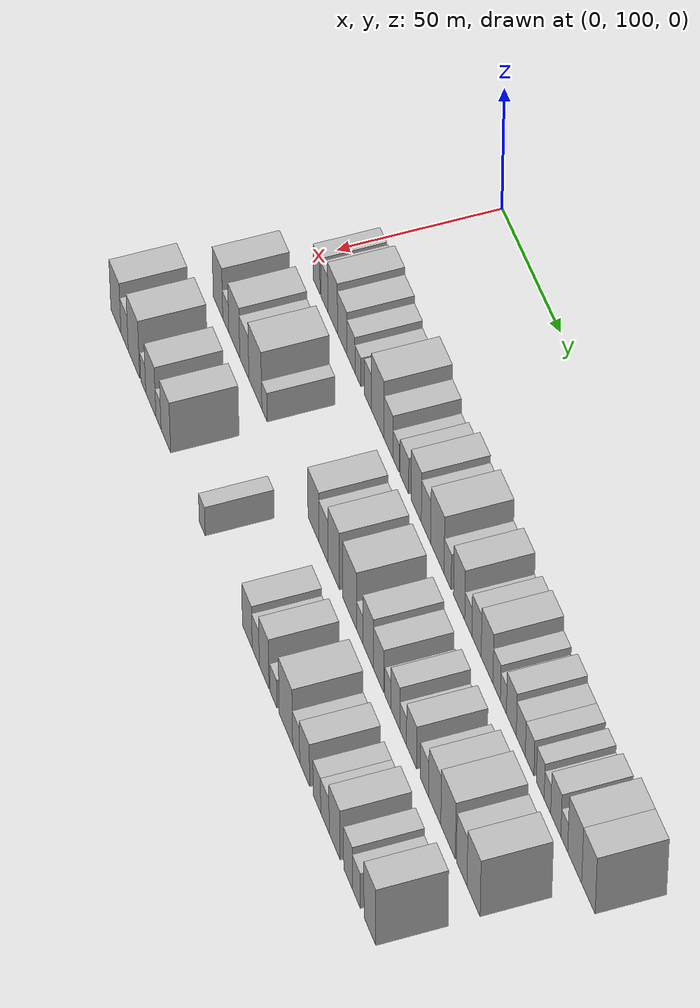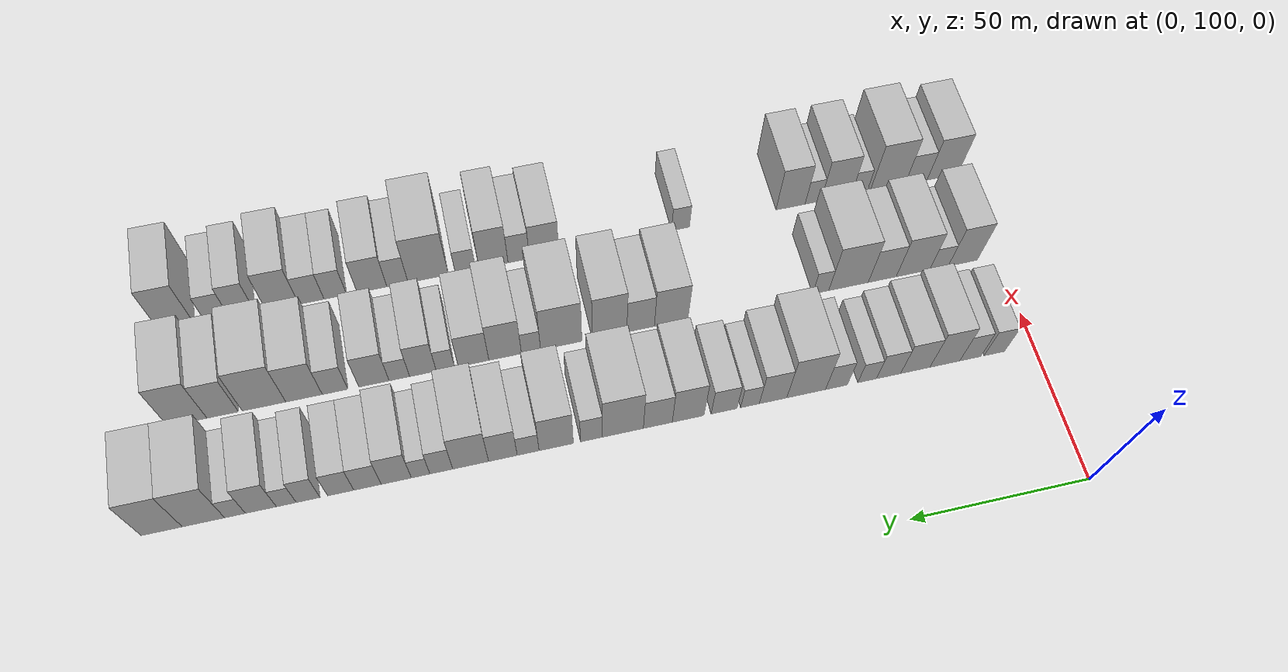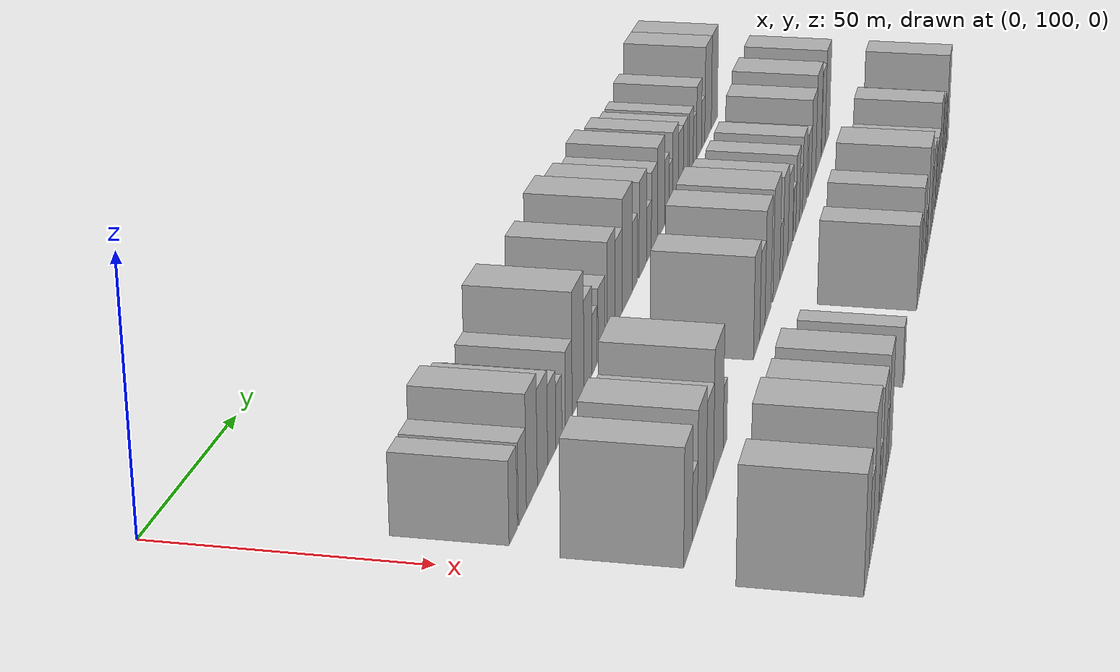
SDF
<sdf version="1.6">
 <world name="default">
  <model name="building_49">
   <static>1</static>
   <pose>50.0000 111.6408 0 0.000000 0.000000 0.000000</pose>
   <link name="link">
    <pose>0 0 7.50 0 0 0</pose>
    <collision name="collision"><geometry><box><size>20.0000 6.0397 15.0000</size></box></geometry></collision>
    <visual name="visual">
     <cast_shadows>0</cast_shadows>
     <geometry><box><size>20.0000 6.0397 15.0000</size></box></geometry>
     <material>
      <script>
       <uri>model://HANNAS_wall/materials/scripts</uri>
       <uri>model://HANNAS_wall/materials/textures</uri>
       <name>vrc/HANNAS_wall</name>
      </script>
     </material>
    </visual>
   </link>
  </model>
  <model name="building_50">
   <static>1</static>
   <pose>50.0000 118.7300 0 0.000000 0.000000 0.000000</pose>
   <link name="link">
    <pose>0 0 7.50 0 0 0</pose>
    <collision name="collision"><geometry><box><size>20.0000 6.1386 15.0000</size></box></geometry></collision>
    <visual name="visual">
     <cast_shadows>0</cast_shadows>
     <geometry><box><size>20.0000 6.1386 15.0000</size></box></geometry>
     <material>
      <script>
       <uri>model://HANNAS_wall/materials/scripts</uri>
       <uri>model://HANNAS_wall/materials/textures</uri>
       <name>vrc/HANNAS_wall</name>
      </script>
     </material>
    </visual>
   </link>
  </model>
  <model name="building_51">
   <static>1</static>
   <pose>50.0000 126.1779 0 0.000000 0.000000 0.000000</pose>
   <link name="link">
    <pose>0 0 10.50 0 0 0</pose>
    <collision name="collision"><geometry><box><size>20.0000 8.7572 21.0000</size></box></geometry></collision>
    <visual name="visual">
     <cast_shadows>0</cast_shadows>
     <geometry><box><size>20.0000 8.7572 21.0000</size></box></geometry>
     <material>
      <script>
       <uri>model://HANNAS_wall/materials/scripts</uri>
       <uri>model://HANNAS_wall/materials/textures</uri>
       <name>vrc/HANNAS_wall</name>
      </script>
     </material>
    </visual>
   </link>
  </model>
  <model name="building_52">
   <static>1</static>
   <pose>50.0000 134.8192 0 0.000000 0.000000 0.000000</pose>
   <link name="link">
    <pose>0 0 9.00 0 0 0</pose>
    <collision name="collision"><geometry><box><size>20.0000 8.5254 18.0000</size></box></geometry></collision>
    <visual name="visual">
     <cast_shadows>0</cast_shadows>
     <geometry><box><size>20.0000 8.5254 18.0000</size></box></geometry>
     <material>
      <script>
       <uri>model://HANNAS_wall/materials/scripts</uri>
       <uri>model://HANNAS_wall/materials/textures</uri>
       <name>vrc/HANNAS_wall</name>
      </script>
     </material>
    </visual>
   </link>
  </model>
  <model name="building_53">
   <static>1</static>
   <pose>50.0000 142.6200 0 0.000000 0.000000 0.000000</pose>
   <link name="link">
    <pose>0 0 7.50 0 0 0</pose>
    <collision name="collision"><geometry><box><size>20.0000 7.0762 15.0000</size></box></geometry></collision>
    <visual name="visual">
     <cast_shadows>0</cast_shadows>
     <geometry><box><size>20.0000 7.0762 15.0000</size></box></geometry>
     <material>
      <script>
       <uri>model://HANNAS_wall/materials/scripts</uri>
       <uri>model://HANNAS_wall/materials/textures</uri>
       <name>vrc/HANNAS_wall</name>
      </script>
     </material>
    </visual>
   </link>
  </model>
  <model name="building_54">
   <static>1</static>
   <pose>50.0000 148.8236 0 0.000000 0.000000 0.000000</pose>
   <link name="link">
    <pose>0 0 6.00 0 0 0</pose>
    <collision name="collision"><geometry><box><size>20.0000 5.3311 12.0000</size></box></geometry></collision>
    <visual name="visual">
     <cast_shadows>0</cast_shadows>
     <geometry><box><size>20.0000 5.3311 12.0000</size></box></geometry>
     <material>
      <script>
       <uri>model://HANNAS_wall/materials/scripts</uri>
       <uri>model://HANNAS_wall/materials/textures</uri>
       <name>vrc/HANNAS_wall</name>
      </script>
     </material>
    </visual>
   </link>
  </model>
  <model name="building_55">
   <static>1</static>
   <pose>50.0000 157.6245 0 0.000000 0.000000 0.000000</pose>
   <link name="link">
    <pose>0 0 7.50 0 0 0</pose>
    <collision name="collision"><geometry><box><size>20.0000 6.2707 15.0000</size></box></geometry></collision>
    <visual name="visual">
     <cast_shadows>0</cast_shadows>
     <geometry><box><size>20.0000 6.2707 15.0000</size></box></geometry>
     <material>
      <script>
       <uri>model://HANNAS_wall/materials/scripts</uri>
       <uri>model://HANNAS_wall/materials/textures</uri>
       <name>vrc/HANNAS_wall</name>
      </script>
     </material>
    </visual>
   </link>
  </model>
  <model name="building_56">
   <static>1</static>
   <pose>50.0000 166.3002 0 0.000000 0.000000 0.000000</pose>
   <link name="link">
    <pose>0 0 12.00 0 0 0</pose>
    <collision name="collision"><geometry><box><size>20.0000 11.0808 24.0000</size></box></geometry></collision>
    <visual name="visual">
     <cast_shadows>0</cast_shadows>
     <geometry><box><size>20.0000 11.0808 24.0000</size></box></geometry>
     <material>
      <script>
       <uri>model://HANNAS_wall/materials/scripts</uri>
       <uri>model://HANNAS_wall/materials/textures</uri>
       <name>vrc/HANNAS_wall</name>
      </script>
     </material>
    </visual>
   </link>
  </model>
  <model name="building_57">
   <static>1</static>
   <pose>50.0000 175.7462 0 0.000000 0.000000 0.000000</pose>
   <link name="link">
    <pose>0 0 9.00 0 0 0</pose>
    <collision name="collision"><geometry><box><size>20.0000 7.8112 18.0000</size></box></geometry></collision>
    <visual name="visual">
     <cast_shadows>0</cast_shadows>
     <geometry><box><size>20.0000 7.8112 18.0000</size></box></geometry>
     <material>
      <script>
       <uri>model://HANNAS_wall/materials/scripts</uri>
       <uri>model://HANNAS_wall/materials/textures</uri>
       <name>vrc/HANNAS_wall</name>
      </script>
     </material>
    </visual>
   </link>
  </model>
  <model name="building_58">
   <static>1</static>
   <pose>50.0000 182.2998 0 0.000000 0.000000 0.000000</pose>
   <link name="link">
    <pose>0 0 6.00 0 0 0</pose>
    <collision name="collision"><geometry><box><size>20.0000 5.2960 12.0000</size></box></geometry></collision>
    <visual name="visual">
     <cast_shadows>0</cast_shadows>
     <geometry><box><size>20.0000 5.2960 12.0000</size></box></geometry>
     <material>
      <script>
       <uri>model://HANNAS_wall/materials/scripts</uri>
       <uri>model://HANNAS_wall/materials/textures</uri>
       <name>vrc/HANNAS_wall</name>
      </script>
     </material>
    </visual>
   </link>
  </model>
  <model name="building_59">
   <static>1</static>
   <pose>50.0000 189.6086 0 0.000000 0.000000 0.000000</pose>
   <link name="link">
    <pose>0 0 7.50 0 0 0</pose>
    <collision name="collision"><geometry><box><size>20.0000 7.3216 15.0000</size></box></geometry></collision>
    <visual name="visual">
     <cast_shadows>0</cast_shadows>
     <geometry><box><size>20.0000 7.3216 15.0000</size></box></geometry>
     <material>
      <script>
       <uri>model://HANNAS_wall/materials/scripts</uri>
       <uri>model://HANNAS_wall/materials/textures</uri>
       <name>vrc/HANNAS_wall</name>
      </script>
     </material>
    </visual>
   </link>
  </model>
  <model name="building_60">
   <static>1</static>
   <pose>50.0000 199.7213 0 0.000000 0.000000 0.000000</pose>
   <link name="link">
    <pose>0 0 10.50 0 0 0</pose>
    <collision name="collision"><geometry><box><size>20.0000 8.9038 21.0000</size></box></geometry></collision>
    <visual name="visual">
     <cast_shadows>0</cast_shadows>
     <geometry><box><size>20.0000 8.9038 21.0000</size></box></geometry>
     <material>
      <script>
       <uri>model://HANNAS_wall/materials/scripts</uri>
       <uri>model://HANNAS_wall/materials/textures</uri>
       <name>vrc/HANNAS_wall</name>
      </script>
     </material>
    </visual>
   </link>
  </model>
  <model name="building_61">
   <static>1</static>
   <pose>50.0000 208.2026 0 0.000000 0.000000 0.000000</pose>
   <link name="link">
    <pose>0 0 9.00 0 0 0</pose>
    <collision name="collision"><geometry><box><size>20.0000 8.0587 18.0000</size></box></geometry></collision>
    <visual name="visual">
     <cast_shadows>0</cast_shadows>
     <geometry><box><size>20.0000 8.0587 18.0000</size></box></geometry>
     <material>
      <script>
       <uri>model://HANNAS_wall/materials/scripts</uri>
       <uri>model://HANNAS_wall/materials/textures</uri>
       <name>vrc/HANNAS_wall</name>
      </script>
     </material>
    </visual>
   </link>
  </model>
  <model name="building_62">
   <static>1</static>
   <pose>50.0000 217.9049 0 0.000000 0.000000 0.000000</pose>
   <link name="link">
    <pose>0 0 12.00 0 0 0</pose>
    <collision name="collision"><geometry><box><size>20.0000 11.3460 24.0000</size></box></geometry></collision>
    <visual name="visual">
     <cast_shadows>0</cast_shadows>
     <geometry><box><size>20.0000 11.3460 24.0000</size></box></geometry>
     <material>
      <script>
       <uri>model://HANNAS_wall/materials/scripts</uri>
       <uri>model://HANNAS_wall/materials/textures</uri>
       <name>vrc/HANNAS_wall</name>
      </script>
     </material>
    </visual>
   </link>
  </model>
  <model name="building_63">
   <static>1</static>
   <pose>50.0000 226.5868 0 0.000000 0.000000 0.000000</pose>
   <link name="link">
    <pose>0 0 7.50 0 0 0</pose>
    <collision name="collision"><geometry><box><size>20.0000 6.0177 15.0000</size></box></geometry></collision>
    <visual name="visual">
     <cast_shadows>0</cast_shadows>
     <geometry><box><size>20.0000 6.0177 15.0000</size></box></geometry>
     <material>
      <script>
       <uri>model://HANNAS_wall/materials/scripts</uri>
       <uri>model://HANNAS_wall/materials/textures</uri>
       <name>vrc/HANNAS_wall</name>
      </script>
     </material>
    </visual>
   </link>
  </model>
  <model name="building_64">
   <static>1</static>
   <pose>50.0000 236.2916 0 0.000000 0.000000 0.000000</pose>
   <link name="link">
    <pose>0 0 10.50 0 0 0</pose>
    <collision name="collision"><geometry><box><size>20.0000 9.3919 21.0000</size></box></geometry></collision>
    <visual name="visual">
     <cast_shadows>0</cast_shadows>
     <geometry><box><size>20.0000 9.3919 21.0000</size></box></geometry>
     <material>
      <script>
       <uri>model://HANNAS_wall/materials/scripts</uri>
       <uri>model://HANNAS_wall/materials/textures</uri>
       <name>vrc/HANNAS_wall</name>
      </script>
     </material>
    </visual>
   </link>
  </model>
  <model name="building_65">
   <static>1</static>
   <pose>50.0000 243.9687 0 0.000000 0.000000 0.000000</pose>
   <link name="link">
    <pose>0 0 6.00 0 0 0</pose>
    <collision name="collision"><geometry><box><size>20.0000 5.9624 12.0000</size></box></geometry></collision>
    <visual name="visual">
     <cast_shadows>0</cast_shadows>
     <geometry><box><size>20.0000 5.9624 12.0000</size></box></geometry>
     <material>
      <script>
       <uri>model://HANNAS_wall/materials/scripts</uri>
       <uri>model://HANNAS_wall/materials/textures</uri>
       <name>vrc/HANNAS_wall</name>
      </script>
     </material>
    </visual>
   </link>
  </model>
  <model name="building_66">
   <static>1</static>
   <pose>50.0000 250.8356 0 0.000000 0.000000 0.000000</pose>
   <link name="link">
    <pose>0 0 9.00 0 0 0</pose>
    <collision name="collision"><geometry><box><size>20.0000 7.7714 18.0000</size></box></geometry></collision>
    <visual name="visual">
     <cast_shadows>0</cast_shadows>
     <geometry><box><size>20.0000 7.7714 18.0000</size></box></geometry>
     <material>
      <script>
       <uri>model://HANNAS_wall/materials/scripts</uri>
       <uri>model://HANNAS_wall/materials/textures</uri>
       <name>vrc/HANNAS_wall</name>
      </script>
     </material>
    </visual>
   </link>
  </model>
  <model name="building_67">
   <static>1</static>
   <pose>50.0000 259.5712 0 0.000000 0.000000 0.000000</pose>
   <link name="link">
    <pose>0 0 10.50 0 0 0</pose>
    <collision name="collision"><geometry><box><size>20.0000 9.6997 21.0000</size></box></geometry></collision>
    <visual name="visual">
     <cast_shadows>0</cast_shadows>
     <geometry><box><size>20.0000 9.6997 21.0000</size></box></geometry>
     <material>
      <script>
       <uri>model://HANNAS_wall/materials/scripts</uri>
       <uri>model://HANNAS_wall/materials/textures</uri>
       <name>vrc/HANNAS_wall</name>
      </script>
     </material>
    </visual>
   </link>
  </model>
  <model name="building_68">
   <static>1</static>
   <pose>50.0000 267.5066 0 0.000000 0.000000 0.000000</pose>
   <link name="link">
    <pose>0 0 7.50 0 0 0</pose>
    <collision name="collision"><geometry><box><size>20.0000 6.1711 15.0000</size></box></geometry></collision>
    <visual name="visual">
     <cast_shadows>0</cast_shadows>
     <geometry><box><size>20.0000 6.1711 15.0000</size></box></geometry>
     <material>
      <script>
       <uri>model://HANNAS_wall/materials/scripts</uri>
       <uri>model://HANNAS_wall/materials/textures</uri>
       <name>vrc/HANNAS_wall</name>
      </script>
     </material>
    </visual>
   </link>
  </model>
  <model name="building_69">
   <static>1</static>
   <pose>50.0000 273.0611 0 0.000000 0.000000 0.000000</pose>
   <link name="link">
    <pose>0 0 6.00 0 0 0</pose>
    <collision name="collision"><geometry><box><size>20.0000 4.9380 12.0000</size></box></geometry></collision>
    <visual name="visual">
     <cast_shadows>0</cast_shadows>
     <geometry><box><size>20.0000 4.9380 12.0000</size></box></geometry>
     <material>
      <script>
       <uri>model://HANNAS_wall/materials/scripts</uri>
       <uri>model://HANNAS_wall/materials/textures</uri>
       <name>vrc/HANNAS_wall</name>
      </script>
     </material>
    </visual>
   </link>
  </model>
  <model name="building_70">
   <static>1</static>
   <pose>50.0000 279.5484 0 0.000000 0.000000 0.000000</pose>
   <link name="link">
    <pose>0 0 9.00 0 0 0</pose>
    <collision name="collision"><geometry><box><size>20.0000 8.0365 18.0000</size></box></geometry></collision>
    <visual name="visual">
     <cast_shadows>0</cast_shadows>
     <geometry><box><size>20.0000 8.0365 18.0000</size></box></geometry>
     <material>
      <script>
       <uri>model://HANNAS_wall/materials/scripts</uri>
       <uri>model://HANNAS_wall/materials/textures</uri>
       <name>vrc/HANNAS_wall</name>
      </script>
     </material>
    </visual>
   </link>
  </model>
  <model name="building_71">
   <static>1</static>
   <pose>50.0000 287.2281 0 0.000000 0.000000 0.000000</pose>
   <link name="link">
    <pose>0 0 7.50 0 0 0</pose>
    <collision name="collision"><geometry><box><size>20.0000 7.3230 15.0000</size></box></geometry></collision>
    <visual name="visual">
     <cast_shadows>0</cast_shadows>
     <geometry><box><size>20.0000 7.3230 15.0000</size></box></geometry>
     <material>
      <script>
       <uri>model://HANNAS_wall/materials/scripts</uri>
       <uri>model://HANNAS_wall/materials/textures</uri>
       <name>vrc/HANNAS_wall</name>
      </script>
     </material>
    </visual>
   </link>
  </model>
  <model name="building_72">
   <static>1</static>
   <pose>50.0000 294.3664 0 0.000000 0.000000 0.000000</pose>
   <link name="link">
    <pose>0 0 7.50 0 0 0</pose>
    <collision name="collision"><geometry><box><size>20.0000 6.9534 15.0000</size></box></geometry></collision>
    <visual name="visual">
     <cast_shadows>0</cast_shadows>
     <geometry><box><size>20.0000 6.9534 15.0000</size></box></geometry>
     <material>
      <script>
       <uri>model://HANNAS_wall/materials/scripts</uri>
       <uri>model://HANNAS_wall/materials/textures</uri>
       <name>vrc/HANNAS_wall</name>
      </script>
     </material>
    </visual>
   </link>
  </model>
  <model name="building_73">
   <static>1</static>
   <pose>50.0000 302.9774 0 0.000000 0.000000 0.000000</pose>
   <link name="link">
    <pose>0 0 7.50 0 0 0</pose>
    <collision name="collision"><geometry><box><size>20.0000 6.2686 15.0000</size></box></geometry></collision>
    <visual name="visual">
     <cast_shadows>0</cast_shadows>
     <geometry><box><size>20.0000 6.2686 15.0000</size></box></geometry>
     <material>
      <script>
       <uri>model://HANNAS_wall/materials/scripts</uri>
       <uri>model://HANNAS_wall/materials/textures</uri>
       <name>vrc/HANNAS_wall</name>
      </script>
     </material>
    </visual>
   </link>
  </model>
  <model name="building_74">
   <static>1</static>
   <pose>50.0000 308.7234 0 0.000000 0.000000 0.000000</pose>
   <link name="link">
    <pose>0 0 6.00 0 0 0</pose>
    <collision name="collision"><geometry><box><size>20.0000 5.2234 12.0000</size></box></geometry></collision>
    <visual name="visual">
     <cast_shadows>0</cast_shadows>
     <geometry><box><size>20.0000 5.2234 12.0000</size></box></geometry>
     <material>
      <script>
       <uri>model://HANNAS_wall/materials/scripts</uri>
       <uri>model://HANNAS_wall/materials/textures</uri>
       <name>vrc/HANNAS_wall</name>
      </script>
     </material>
    </visual>
   </link>
  </model>
  <model name="building_75">
   <static>1</static>
   <pose>50.0000 315.3781 0 0.000000 0.000000 0.000000</pose>
   <link name="link">
    <pose>0 0 9.00 0 0 0</pose>
    <collision name="collision"><geometry><box><size>20.0000 8.0860 18.0000</size></box></geometry></collision>
    <visual name="visual">
     <cast_shadows>0</cast_shadows>
     <geometry><box><size>20.0000 8.0860 18.0000</size></box></geometry>
     <material>
      <script>
       <uri>model://HANNAS_wall/materials/scripts</uri>
       <uri>model://HANNAS_wall/materials/textures</uri>
       <name>vrc/HANNAS_wall</name>
      </script>
     </material>
    </visual>
   </link>
  </model>
  <model name="building_76">
   <static>1</static>
   <pose>50.0000 322.1423 0 0.000000 0.000000 0.000000</pose>
   <link name="link">
    <pose>0 0 6.00 0 0 0</pose>
    <collision name="collision"><geometry><box><size>20.0000 5.4425 12.0000</size></box></geometry></collision>
    <visual name="visual">
     <cast_shadows>0</cast_shadows>
     <geometry><box><size>20.0000 5.4425 12.0000</size></box></geometry>
     <material>
      <script>
       <uri>model://HANNAS_wall/materials/scripts</uri>
       <uri>model://HANNAS_wall/materials/textures</uri>
       <name>vrc/HANNAS_wall</name>
      </script>
     </material>
    </visual>
   </link>
  </model>
  <model name="building_77">
   <static>1</static>
   <pose>50.0000 330.3564 0 0.000000 0.000000 0.000000</pose>
   <link name="link">
    <pose>0 0 12.00 0 0 0</pose>
    <collision name="collision"><geometry><box><size>20.0000 10.9857 24.0000</size></box></geometry></collision>
    <visual name="visual">
     <cast_shadows>0</cast_shadows>
     <geometry><box><size>20.0000 10.9857 24.0000</size></box></geometry>
     <material>
      <script>
       <uri>model://HANNAS_wall/materials/scripts</uri>
       <uri>model://HANNAS_wall/materials/textures</uri>
       <name>vrc/HANNAS_wall</name>
      </script>
     </material>
    </visual>
   </link>
  </model>
  <model name="building_78">
   <static>1</static>
   <pose>50.0000 341.1482 0 0.000000 0.000000 0.000000</pose>
   <link name="link">
    <pose>0 0 12.00 0 0 0</pose>
    <collision name="collision"><geometry><box><size>20.0000 10.5978 24.0000</size></box></geometry></collision>
    <visual name="visual">
     <cast_shadows>0</cast_shadows>
     <geometry><box><size>20.0000 10.5978 24.0000</size></box></geometry>
     <material>
      <script>
       <uri>model://HANNAS_wall/materials/scripts</uri>
       <uri>model://HANNAS_wall/materials/textures</uri>
       <name>vrc/HANNAS_wall</name>
      </script>
     </material>
    </visual>
   </link>
  </model>
  <model name="building_127">
   <static>1</static>
   <pose>79.0000 110.3373 0 0.000000 0.000000 0.000000</pose>
   <link name="link">
    <pose>0 0 10.50 0 0 0</pose>
    <collision name="collision"><geometry><box><size>20.0000 8.8438 21.0000</size></box></geometry></collision>
    <visual name="visual">
     <cast_shadows>0</cast_shadows>
     <geometry><box><size>20.0000 8.8438 21.0000</size></box></geometry>
     <material>
      <script>
       <uri>model://HANNAS_wall/materials/scripts</uri>
       <uri>model://HANNAS_wall/materials/textures</uri>
       <name>vrc/HANNAS_wall</name>
      </script>
     </material>
    </visual>
   </link>
  </model>
  <model name="building_128">
   <static>1</static>
   <pose>79.0000 117.5752 0 0.000000 0.000000 0.000000</pose>
   <link name="link">
    <pose>0 0 6.00 0 0 0</pose>
    <collision name="collision"><geometry><box><size>20.0000 5.6321 12.0000</size></box></geometry></collision>
    <visual name="visual">
     <cast_shadows>0</cast_shadows>
     <geometry><box><size>20.0000 5.6321 12.0000</size></box></geometry>
     <material>
      <script>
       <uri>model://HANNAS_wall/materials/scripts</uri>
       <uri>model://HANNAS_wall/materials/textures</uri>
       <name>vrc/HANNAS_wall</name>
      </script>
     </material>
    </visual>
   </link>
  </model>
  <model name="building_129">
   <static>1</static>
   <pose>79.0000 125.4555 0 0.000000 0.000000 0.000000</pose>
   <link name="link">
    <pose>0 0 10.50 0 0 0</pose>
    <collision name="collision"><geometry><box><size>20.0000 10.1285 21.0000</size></box></geometry></collision>
    <visual name="visual">
     <cast_shadows>0</cast_shadows>
     <geometry><box><size>20.0000 10.1285 21.0000</size></box></geometry>
     <material>
      <script>
       <uri>model://HANNAS_wall/materials/scripts</uri>
       <uri>model://HANNAS_wall/materials/textures</uri>
       <name>vrc/HANNAS_wall</name>
      </script>
     </material>
    </visual>
   </link>
  </model>
  <model name="building_130">
   <static>1</static>
   <pose>79.0000 134.7312 0 0.000000 0.000000 0.000000</pose>
   <link name="link">
    <pose>0 0 9.00 0 0 0</pose>
    <collision name="collision"><geometry><box><size>20.0000 8.4230 18.0000</size></box></geometry></collision>
    <visual name="visual">
     <cast_shadows>0</cast_shadows>
     <geometry><box><size>20.0000 8.4230 18.0000</size></box></geometry>
     <material>
      <script>
       <uri>model://HANNAS_wall/materials/scripts</uri>
       <uri>model://HANNAS_wall/materials/textures</uri>
       <name>vrc/HANNAS_wall</name>
      </script>
     </material>
    </visual>
   </link>
  </model>
  <model name="building_131">
   <static>1</static>
   <pose>79.0000 144.8569 0 0.000000 0.000000 0.000000</pose>
   <link name="link">
    <pose>0 0 12.00 0 0 0</pose>
    <collision name="collision"><geometry><box><size>20.0000 11.8283 24.0000</size></box></geometry></collision>
    <visual name="visual">
     <cast_shadows>0</cast_shadows>
     <geometry><box><size>20.0000 11.8283 24.0000</size></box></geometry>
     <material>
      <script>
       <uri>model://HANNAS_wall/materials/scripts</uri>
       <uri>model://HANNAS_wall/materials/textures</uri>
       <name>vrc/HANNAS_wall</name>
      </script>
     </material>
    </visual>
   </link>
  </model>
  <model name="building_132">
   <static>1</static>
   <pose>79.0000 153.1781 0 0.000000 0.000000 0.000000</pose>
   <link name="link">
    <pose>0 0 6.00 0 0 0</pose>
    <collision name="collision"><geometry><box><size>20.0000 4.8141 12.0000</size></box></geometry></collision>
    <visual name="visual">
     <cast_shadows>0</cast_shadows>
     <geometry><box><size>20.0000 4.8141 12.0000</size></box></geometry>
     <material>
      <script>
       <uri>model://HANNAS_wall/materials/scripts</uri>
       <uri>model://HANNAS_wall/materials/textures</uri>
       <name>vrc/HANNAS_wall</name>
      </script>
     </material>
    </visual>
   </link>
  </model>
  <model name="building_133">
   <static>1</static>
   <pose>79.0000 197.1831 0 0.000000 0.000000 0.000000</pose>
   <link name="link">
    <pose>0 0 10.50 0 0 0</pose>
    <collision name="collision"><geometry><box><size>20.0000 9.7320 21.0000</size></box></geometry></collision>
    <visual name="visual">
     <cast_shadows>0</cast_shadows>
     <geometry><box><size>20.0000 9.7320 21.0000</size></box></geometry>
     <material>
      <script>
       <uri>model://HANNAS_wall/materials/scripts</uri>
       <uri>model://HANNAS_wall/materials/textures</uri>
       <name>vrc/HANNAS_wall</name>
      </script>
     </material>
    </visual>
   </link>
  </model>
  <model name="building_134">
   <static>1</static>
   <pose>79.0000 206.0407 0 0.000000 0.000000 0.000000</pose>
   <link name="link">
    <pose>0 0 9.00 0 0 0</pose>
    <collision name="collision"><geometry><box><size>20.0000 7.9832 18.0000</size></box></geometry></collision>
    <visual name="visual">
     <cast_shadows>0</cast_shadows>
     <geometry><box><size>20.0000 7.9832 18.0000</size></box></geometry>
     <material>
      <script>
       <uri>model://HANNAS_wall/materials/scripts</uri>
       <uri>model://HANNAS_wall/materials/textures</uri>
       <name>vrc/HANNAS_wall</name>
      </script>
     </material>
    </visual>
   </link>
  </model>
  <model name="building_135">
   <static>1</static>
   <pose>79.0000 214.9859 0 0.000000 0.000000 0.000000</pose>
   <link name="link">
    <pose>0 0 12.00 0 0 0</pose>
    <collision name="collision"><geometry><box><size>20.0000 9.9070 24.0000</size></box></geometry></collision>
    <visual name="visual">
     <cast_shadows>0</cast_shadows>
     <geometry><box><size>20.0000 9.9070 24.0000</size></box></geometry>
     <material>
      <script>
       <uri>model://HANNAS_wall/materials/scripts</uri>
       <uri>model://HANNAS_wall/materials/textures</uri>
       <name>vrc/HANNAS_wall</name>
      </script>
     </material>
    </visual>
   </link>
  </model>
  <model name="building_136">
   <static>1</static>
   <pose>79.0000 228.8286 0 0.000000 0.000000 0.000000</pose>
   <link name="link">
    <pose>0 0 12.00 0 0 0</pose>
    <collision name="collision"><geometry><box><size>20.0000 11.7784 24.0000</size></box></geometry></collision>
    <visual name="visual">
     <cast_shadows>0</cast_shadows>
     <geometry><box><size>20.0000 11.7784 24.0000</size></box></geometry>
     <material>
      <script>
       <uri>model://HANNAS_wall/materials/scripts</uri>
       <uri>model://HANNAS_wall/materials/textures</uri>
       <name>vrc/HANNAS_wall</name>
      </script>
     </material>
    </visual>
   </link>
  </model>
  <model name="building_137">
   <static>1</static>
   <pose>79.0000 237.4305 0 0.000000 0.000000 0.000000</pose>
   <link name="link">
    <pose>0 0 6.00 0 0 0</pose>
    <collision name="collision"><geometry><box><size>20.0000 5.4254 12.0000</size></box></geometry></collision>
    <visual name="visual">
     <cast_shadows>0</cast_shadows>
     <geometry><box><size>20.0000 5.4254 12.0000</size></box></geometry>
     <material>
      <script>
       <uri>model://HANNAS_wall/materials/scripts</uri>
       <uri>model://HANNAS_wall/materials/textures</uri>
       <name>vrc/HANNAS_wall</name>
      </script>
     </material>
    </visual>
   </link>
  </model>
  <model name="building_138">
   <static>1</static>
   <pose>79.0000 244.7499 0 0.000000 0.000000 0.000000</pose>
   <link name="link">
    <pose>0 0 10.50 0 0 0</pose>
    <collision name="collision"><geometry><box><size>20.0000 9.2133 21.0000</size></box></geometry></collision>
    <visual name="visual">
     <cast_shadows>0</cast_shadows>
     <geometry><box><size>20.0000 9.2133 21.0000</size></box></geometry>
     <material>
      <script>
       <uri>model://HANNAS_wall/materials/scripts</uri>
       <uri>model://HANNAS_wall/materials/textures</uri>
       <name>vrc/HANNAS_wall</name>
      </script>
     </material>
    </visual>
   </link>
  </model>
  <model name="building_139">
   <static>1</static>
   <pose>79.0000 253.6686 0 0.000000 0.000000 0.000000</pose>
   <link name="link">
    <pose>0 0 9.00 0 0 0</pose>
    <collision name="collision"><geometry><box><size>20.0000 8.6242 18.0000</size></box></geometry></collision>
    <visual name="visual">
     <cast_shadows>0</cast_shadows>
     <geometry><box><size>20.0000 8.6242 18.0000</size></box></geometry>
     <material>
      <script>
       <uri>model://HANNAS_wall/materials/scripts</uri>
       <uri>model://HANNAS_wall/materials/textures</uri>
       <name>vrc/HANNAS_wall</name>
      </script>
     </material>
    </visual>
   </link>
  </model>
  <model name="building_140">
   <static>1</static>
   <pose>79.0000 261.5487 0 0.000000 0.000000 0.000000</pose>
   <link name="link">
    <pose>0 0 6.00 0 0 0</pose>
    <collision name="collision"><geometry><box><size>20.0000 5.1360 12.0000</size></box></geometry></collision>
    <visual name="visual">
     <cast_shadows>0</cast_shadows>
     <geometry><box><size>20.0000 5.1360 12.0000</size></box></geometry>
     <material>
      <script>
       <uri>model://HANNAS_wall/materials/scripts</uri>
       <uri>model://HANNAS_wall/materials/textures</uri>
       <name>vrc/HANNAS_wall</name>
      </script>
     </material>
    </visual>
   </link>
  </model>
  <model name="building_141">
   <static>1</static>
   <pose>79.0000 267.8444 0 0.000000 0.000000 0.000000</pose>
   <link name="link">
    <pose>0 0 9.00 0 0 0</pose>
    <collision name="collision"><geometry><box><size>20.0000 7.4554 18.0000</size></box></geometry></collision>
    <visual name="visual">
     <cast_shadows>0</cast_shadows>
     <geometry><box><size>20.0000 7.4554 18.0000</size></box></geometry>
     <material>
      <script>
       <uri>model://HANNAS_wall/materials/scripts</uri>
       <uri>model://HANNAS_wall/materials/textures</uri>
       <name>vrc/HANNAS_wall</name>
      </script>
     </material>
    </visual>
   </link>
  </model>
  <model name="building_142">
   <static>1</static>
   <pose>79.0000 274.4184 0 0.000000 0.000000 0.000000</pose>
   <link name="link">
    <pose>0 0 6.00 0 0 0</pose>
    <collision name="collision"><geometry><box><size>20.0000 5.6927 12.0000</size></box></geometry></collision>
    <visual name="visual">
     <cast_shadows>0</cast_shadows>
     <geometry><box><size>20.0000 5.6927 12.0000</size></box></geometry>
     <material>
      <script>
       <uri>model://HANNAS_wall/materials/scripts</uri>
       <uri>model://HANNAS_wall/materials/textures</uri>
       <name>vrc/HANNAS_wall</name>
      </script>
     </material>
    </visual>
   </link>
  </model>
  <model name="building_143">
   <static>1</static>
   <pose>79.0000 281.4636 0 0.000000 0.000000 0.000000</pose>
   <link name="link">
    <pose>0 0 9.00 0 0 0</pose>
    <collision name="collision"><geometry><box><size>20.0000 8.3975 18.0000</size></box></geometry></collision>
    <visual name="visual">
     <cast_shadows>0</cast_shadows>
     <geometry><box><size>20.0000 8.3975 18.0000</size></box></geometry>
     <material>
      <script>
       <uri>model://HANNAS_wall/materials/scripts</uri>
       <uri>model://HANNAS_wall/materials/textures</uri>
       <name>vrc/HANNAS_wall</name>
      </script>
     </material>
    </visual>
   </link>
  </model>
  <model name="building_144">
   <static>1</static>
   <pose>79.0000 292.1937 0 0.000000 0.000000 0.000000</pose>
   <link name="link">
    <pose>0 0 7.50 0 0 0</pose>
    <collision name="collision"><geometry><box><size>20.0000 7.0628 15.0000</size></box></geometry></collision>
    <visual name="visual">
     <cast_shadows>0</cast_shadows>
     <geometry><box><size>20.0000 7.0628 15.0000</size></box></geometry>
     <material>
      <script>
       <uri>model://HANNAS_wall/materials/scripts</uri>
       <uri>model://HANNAS_wall/materials/textures</uri>
       <name>vrc/HANNAS_wall</name>
      </script>
     </material>
    </visual>
   </link>
  </model>
  <model name="building_145">
   <static>1</static>
   <pose>79.0000 300.7215 0 0.000000 0.000000 0.000000</pose>
   <link name="link">
    <pose>0 0 10.50 0 0 0</pose>
    <collision name="collision"><geometry><box><size>20.0000 9.9928 21.0000</size></box></geometry></collision>
    <visual name="visual">
     <cast_shadows>0</cast_shadows>
     <geometry><box><size>20.0000 9.9928 21.0000</size></box></geometry>
     <material>
      <script>
       <uri>model://HANNAS_wall/materials/scripts</uri>
       <uri>model://HANNAS_wall/materials/textures</uri>
       <name>vrc/HANNAS_wall</name>
      </script>
     </material>
    </visual>
   </link>
  </model>
  <model name="building_146">
   <static>1</static>
   <pose>79.0000 311.6575 0 0.000000 0.000000 0.000000</pose>
   <link name="link">
    <pose>0 0 12.00 0 0 0</pose>
    <collision name="collision"><geometry><box><size>20.0000 11.8792 24.0000</size></box></geometry></collision>
    <visual name="visual">
     <cast_shadows>0</cast_shadows>
     <geometry><box><size>20.0000 11.8792 24.0000</size></box></geometry>
     <material>
      <script>
       <uri>model://HANNAS_wall/materials/scripts</uri>
       <uri>model://HANNAS_wall/materials/textures</uri>
       <name>vrc/HANNAS_wall</name>
      </script>
     </material>
    </visual>
   </link>
  </model>
  <model name="building_147">
   <static>1</static>
   <pose>79.0000 322.8623 0 0.000000 0.000000 0.000000</pose>
   <link name="link">
    <pose>0 0 10.50 0 0 0</pose>
    <collision name="collision"><geometry><box><size>20.0000 8.5304 21.0000</size></box></geometry></collision>
    <visual name="visual">
     <cast_shadows>0</cast_shadows>
     <geometry><box><size>20.0000 8.5304 21.0000</size></box></geometry>
     <material>
      <script>
       <uri>model://HANNAS_wall/materials/scripts</uri>
       <uri>model://HANNAS_wall/materials/textures</uri>
       <name>vrc/HANNAS_wall</name>
      </script>
     </material>
    </visual>
   </link>
  </model>
  <model name="building_148">
   <static>1</static>
   <pose>79.0000 332.4057 0 0.000000 0.000000 0.000000</pose>
   <link name="link">
    <pose>0 0 12.00 0 0 0</pose>
    <collision name="collision"><geometry><box><size>20.0000 10.5563 24.0000</size></box></geometry></collision>
    <visual name="visual">
     <cast_shadows>0</cast_shadows>
     <geometry><box><size>20.0000 10.5563 24.0000</size></box></geometry>
     <material>
      <script>
       <uri>model://HANNAS_wall/materials/scripts</uri>
       <uri>model://HANNAS_wall/materials/textures</uri>
       <name>vrc/HANNAS_wall</name>
      </script>
     </material>
    </visual>
   </link>
  </model>
  <model name="building_198">
   <static>1</static>
   <pose>108.0000 106.1569 0 0.000000 0.000000 0.000000</pose>
   <link name="link">
    <pose>0 0 10.50 0 0 0</pose>
    <collision name="collision"><geometry><box><size>20.0000 9.6505 21.0000</size></box></geometry></collision>
    <visual name="visual">
     <cast_shadows>0</cast_shadows>
     <geometry><box><size>20.0000 9.6505 21.0000</size></box></geometry>
     <material>
      <script>
       <uri>model://HANNAS_wall/materials/scripts</uri>
       <uri>model://HANNAS_wall/materials/textures</uri>
       <name>vrc/HANNAS_wall</name>
      </script>
     </material>
    </visual>
   </link>
  </model>
  <model name="building_199">
   <static>1</static>
   <pose>108.0000 114.4764 0 0.000000 0.000000 0.000000</pose>
   <link name="link">
    <pose>0 0 7.50 0 0 0</pose>
    <collision name="collision"><geometry><box><size>20.0000 6.9886 15.0000</size></box></geometry></collision>
    <visual name="visual">
     <cast_shadows>0</cast_shadows>
     <geometry><box><size>20.0000 6.9886 15.0000</size></box></geometry>
     <material>
      <script>
       <uri>model://HANNAS_wall/materials/scripts</uri>
       <uri>model://HANNAS_wall/materials/textures</uri>
       <name>vrc/HANNAS_wall</name>
      </script>
     </material>
    </visual>
   </link>
  </model>
  <model name="building_200">
   <static>1</static>
   <pose>108.0000 123.4069 0 0.000000 0.000000 0.000000</pose>
   <link name="link">
    <pose>0 0 12.00 0 0 0</pose>
    <collision name="collision"><geometry><box><size>20.0000 10.8723 24.0000</size></box></geometry></collision>
    <visual name="visual">
     <cast_shadows>0</cast_shadows>
     <geometry><box><size>20.0000 10.8723 24.0000</size></box></geometry>
     <material>
      <script>
       <uri>model://HANNAS_wall/materials/scripts</uri>
       <uri>model://HANNAS_wall/materials/textures</uri>
       <name>vrc/HANNAS_wall</name>
      </script>
     </material>
    </visual>
   </link>
  </model>
  <model name="building_201">
   <static>1</static>
   <pose>108.0000 132.2599 0 0.000000 0.000000 0.000000</pose>
   <link name="link">
    <pose>0 0 6.00 0 0 0</pose>
    <collision name="collision"><geometry><box><size>20.0000 4.8338 12.0000</size></box></geometry></collision>
    <visual name="visual">
     <cast_shadows>0</cast_shadows>
     <geometry><box><size>20.0000 4.8338 12.0000</size></box></geometry>
     <material>
      <script>
       <uri>model://HANNAS_wall/materials/scripts</uri>
       <uri>model://HANNAS_wall/materials/textures</uri>
       <name>vrc/HANNAS_wall</name>
      </script>
     </material>
    </visual>
   </link>
  </model>
  <model name="building_202">
   <static>1</static>
   <pose>108.0000 139.4185 0 0.000000 0.000000 0.000000</pose>
   <link name="link">
    <pose>0 0 10.50 0 0 0</pose>
    <collision name="collision"><geometry><box><size>20.0000 9.4834 21.0000</size></box></geometry></collision>
    <visual name="visual">
     <cast_shadows>0</cast_shadows>
     <geometry><box><size>20.0000 9.4834 21.0000</size></box></geometry>
     <material>
      <script>
       <uri>model://HANNAS_wall/materials/scripts</uri>
       <uri>model://HANNAS_wall/materials/textures</uri>
       <name>vrc/HANNAS_wall</name>
      </script>
     </material>
    </visual>
   </link>
  </model>
  <model name="building_203">
   <static>1</static>
   <pose>108.0000 146.5868 0 0.000000 0.000000 0.000000</pose>
   <link name="link">
    <pose>0 0 6.00 0 0 0</pose>
    <collision name="collision"><geometry><box><size>20.0000 4.8532 12.0000</size></box></geometry></collision>
    <visual name="visual">
     <cast_shadows>0</cast_shadows>
     <geometry><box><size>20.0000 4.8532 12.0000</size></box></geometry>
     <material>
      <script>
       <uri>model://HANNAS_wall/materials/scripts</uri>
       <uri>model://HANNAS_wall/materials/textures</uri>
       <name>vrc/HANNAS_wall</name>
      </script>
     </material>
    </visual>
   </link>
  </model>
  <model name="building_204">
   <static>1</static>
   <pose>108.0000 153.4831 0 0.000000 0.000000 0.000000</pose>
   <link name="link">
    <pose>0 0 10.50 0 0 0</pose>
    <collision name="collision"><geometry><box><size>20.0000 8.9393 21.0000</size></box></geometry></collision>
    <visual name="visual">
     <cast_shadows>0</cast_shadows>
     <geometry><box><size>20.0000 8.9393 21.0000</size></box></geometry>
     <material>
      <script>
       <uri>model://HANNAS_wall/materials/scripts</uri>
       <uri>model://HANNAS_wall/materials/textures</uri>
       <name>vrc/HANNAS_wall</name>
      </script>
     </material>
    </visual>
   </link>
  </model>
  <model name="building_205">
   <static>1</static>
   <pose>108.0000 187.0820 0 0.000000 0.000000 0.000000</pose>
   <link name="link">
    <pose>0 0 6.00 0 0 0</pose>
    <collision name="collision"><geometry><box><size>20.0000 5.4195 12.0000</size></box></geometry></collision>
    <visual name="visual">
     <cast_shadows>0</cast_shadows>
     <geometry><box><size>20.0000 5.4195 12.0000</size></box></geometry>
     <material>
      <script>
       <uri>model://HANNAS_wall/materials/scripts</uri>
       <uri>model://HANNAS_wall/materials/textures</uri>
       <name>vrc/HANNAS_wall</name>
      </script>
     </material>
    </visual>
   </link>
  </model>
  <model name="building_206">
   <static>1</static>
   <pose>108.0000 227.7985 0 0.000000 0.000000 0.000000</pose>
   <link name="link">
    <pose>0 0 9.00 0 0 0</pose>
    <collision name="collision"><geometry><box><size>20.0000 8.6712 18.0000</size></box></geometry></collision>
    <visual name="visual">
     <cast_shadows>0</cast_shadows>
     <geometry><box><size>20.0000 8.6712 18.0000</size></box></geometry>
     <material>
      <script>
       <uri>model://HANNAS_wall/materials/scripts</uri>
       <uri>model://HANNAS_wall/materials/textures</uri>
       <name>vrc/HANNAS_wall</name>
      </script>
     </material>
    </visual>
   </link>
  </model>
  <model name="building_207">
   <static>1</static>
   <pose>108.0000 235.2834 0 0.000000 0.000000 0.000000</pose>
   <link name="link">
    <pose>0 0 7.50 0 0 0</pose>
    <collision name="collision"><geometry><box><size>20.0000 6.2986 15.0000</size></box></geometry></collision>
    <visual name="visual">
     <cast_shadows>0</cast_shadows>
     <geometry><box><size>20.0000 6.2986 15.0000</size></box></geometry>
     <material>
      <script>
       <uri>model://HANNAS_wall/materials/scripts</uri>
       <uri>model://HANNAS_wall/materials/textures</uri>
       <name>vrc/HANNAS_wall</name>
      </script>
     </material>
    </visual>
   </link>
  </model>
  <model name="building_208">
   <static>1</static>
   <pose>108.0000 242.6789 0 0.000000 0.000000 0.000000</pose>
   <link name="link">
    <pose>0 0 10.50 0 0 0</pose>
    <collision name="collision"><geometry><box><size>20.0000 8.4924 21.0000</size></box></geometry></collision>
    <visual name="visual">
     <cast_shadows>0</cast_shadows>
     <geometry><box><size>20.0000 8.4924 21.0000</size></box></geometry>
     <material>
      <script>
       <uri>model://HANNAS_wall/materials/scripts</uri>
       <uri>model://HANNAS_wall/materials/textures</uri>
       <name>vrc/HANNAS_wall</name>
      </script>
     </material>
    </visual>
   </link>
  </model>
  <model name="building_209">
   <static>1</static>
   <pose>108.0000 250.8998 0 0.000000 0.000000 0.000000</pose>
   <link name="link">
    <pose>0 0 6.00 0 0 0</pose>
    <collision name="collision"><geometry><box><size>20.0000 5.9492 12.0000</size></box></geometry></collision>
    <visual name="visual">
     <cast_shadows>0</cast_shadows>
     <geometry><box><size>20.0000 5.9492 12.0000</size></box></geometry>
     <material>
      <script>
       <uri>model://HANNAS_wall/materials/scripts</uri>
       <uri>model://HANNAS_wall/materials/textures</uri>
       <name>vrc/HANNAS_wall</name>
      </script>
     </material>
    </visual>
   </link>
  </model>
  <model name="building_210">
   <static>1</static>
   <pose>108.0000 261.7188 0 0.000000 0.000000 0.000000</pose>
   <link name="link">
    <pose>0 0 12.00 0 0 0</pose>
    <collision name="collision"><geometry><box><size>20.0000 11.6890 24.0000</size></box></geometry></collision>
    <visual name="visual">
     <cast_shadows>0</cast_shadows>
     <geometry><box><size>20.0000 11.6890 24.0000</size></box></geometry>
     <material>
      <script>
       <uri>model://HANNAS_wall/materials/scripts</uri>
       <uri>model://HANNAS_wall/materials/textures</uri>
       <name>vrc/HANNAS_wall</name>
      </script>
     </material>
    </visual>
   </link>
  </model>
  <model name="building_211">
   <static>1</static>
   <pose>108.0000 270.6141 0 0.000000 0.000000 0.000000</pose>
   <link name="link">
    <pose>0 0 7.50 0 0 0</pose>
    <collision name="collision"><geometry><box><size>20.0000 6.1015 15.0000</size></box></geometry></collision>
    <visual name="visual">
     <cast_shadows>0</cast_shadows>
     <geometry><box><size>20.0000 6.1015 15.0000</size></box></geometry>
     <material>
      <script>
       <uri>model://HANNAS_wall/materials/scripts</uri>
       <uri>model://HANNAS_wall/materials/textures</uri>
       <name>vrc/HANNAS_wall</name>
      </script>
     </material>
    </visual>
   </link>
  </model>
  <model name="building_212">
   <static>1</static>
   <pose>108.0000 277.9467 0 0.000000 0.000000 0.000000</pose>
   <link name="link">
    <pose>0 0 9.00 0 0 0</pose>
    <collision name="collision"><geometry><box><size>20.0000 8.5638 18.0000</size></box></geometry></collision>
    <visual name="visual">
     <cast_shadows>0</cast_shadows>
     <geometry><box><size>20.0000 8.5638 18.0000</size></box></geometry>
     <material>
      <script>
       <uri>model://HANNAS_wall/materials/scripts</uri>
       <uri>model://HANNAS_wall/materials/textures</uri>
       <name>vrc/HANNAS_wall</name>
      </script>
     </material>
    </visual>
   </link>
  </model>
  <model name="building_213">
   <static>1</static>
   <pose>108.0000 288.4595 0 0.000000 0.000000 0.000000</pose>
   <link name="link">
    <pose>0 0 7.50 0 0 0</pose>
    <collision name="collision"><geometry><box><size>20.0000 6.4618 15.0000</size></box></geometry></collision>
    <visual name="visual">
     <cast_shadows>0</cast_shadows>
     <geometry><box><size>20.0000 6.4618 15.0000</size></box></geometry>
     <material>
      <script>
       <uri>model://HANNAS_wall/materials/scripts</uri>
       <uri>model://HANNAS_wall/materials/textures</uri>
       <name>vrc/HANNAS_wall</name>
      </script>
     </material>
    </visual>
   </link>
  </model>
  <model name="building_214">
   <static>1</static>
   <pose>108.0000 295.2804 0 0.000000 0.000000 0.000000</pose>
   <link name="link">
    <pose>0 0 7.50 0 0 0</pose>
    <collision name="collision"><geometry><box><size>20.0000 7.1800 15.0000</size></box></geometry></collision>
    <visual name="visual">
     <cast_shadows>0</cast_shadows>
     <geometry><box><size>20.0000 7.1800 15.0000</size></box></geometry>
     <material>
      <script>
       <uri>model://HANNAS_wall/materials/scripts</uri>
       <uri>model://HANNAS_wall/materials/textures</uri>
       <name>vrc/HANNAS_wall</name>
      </script>
     </material>
    </visual>
   </link>
  </model>
  <model name="building_215">
   <static>1</static>
   <pose>108.0000 303.5108 0 0.000000 0.000000 0.000000</pose>
   <link name="link">
    <pose>0 0 10.50 0 0 0</pose>
    <collision name="collision"><geometry><box><size>20.0000 9.2810 21.0000</size></box></geometry></collision>
    <visual name="visual">
     <cast_shadows>0</cast_shadows>
     <geometry><box><size>20.0000 9.2810 21.0000</size></box></geometry>
     <material>
      <script>
       <uri>model://HANNAS_wall/materials/scripts</uri>
       <uri>model://HANNAS_wall/materials/textures</uri>
       <name>vrc/HANNAS_wall</name>
      </script>
     </material>
    </visual>
   </link>
  </model>
  <model name="building_216">
   <static>1</static>
   <pose>108.0000 314.7921 0 0.000000 0.000000 0.000000</pose>
   <link name="link">
    <pose>0 0 9.00 0 0 0</pose>
    <collision name="collision"><geometry><box><size>20.0000 7.2815 18.0000</size></box></geometry></collision>
    <visual name="visual">
     <cast_shadows>0</cast_shadows>
     <geometry><box><size>20.0000 7.2815 18.0000</size></box></geometry>
     <material>
      <script>
       <uri>model://HANNAS_wall/materials/scripts</uri>
       <uri>model://HANNAS_wall/materials/textures</uri>
       <name>vrc/HANNAS_wall</name>
      </script>
     </material>
    </visual>
   </link>
  </model>
  <model name="building_217">
   <static>1</static>
   <pose>108.0000 321.7844 0 0.000000 0.000000 0.000000</pose>
   <link name="link">
    <pose>0 0 7.50 0 0 0</pose>
    <collision name="collision"><geometry><box><size>20.0000 6.7032 15.0000</size></box></geometry></collision>
    <visual name="visual">
     <cast_shadows>0</cast_shadows>
     <geometry><box><size>20.0000 6.7032 15.0000</size></box></geometry>
     <material>
      <script>
       <uri>model://HANNAS_wall/materials/scripts</uri>
       <uri>model://HANNAS_wall/materials/textures</uri>
       <name>vrc/HANNAS_wall</name>
      </script>
     </material>
    </visual>
   </link>
  </model>
  <model name="building_218">
   <static>1</static>
   <pose>108.0000 333.0320 0 0.000000 0.000000 0.000000</pose>
   <link name="link">
    <pose>0 0 12.00 0 0 0</pose>
    <collision name="collision"><geometry><box><size>20.0000 9.7920 24.0000</size></box></geometry></collision>
    <visual name="visual">
     <cast_shadows>0</cast_shadows>
     <geometry><box><size>20.0000 9.7920 24.0000</size></box></geometry>
     <material>
      <script>
       <uri>model://HANNAS_wall/materials/scripts</uri>
       <uri>model://HANNAS_wall/materials/textures</uri>
       <name>vrc/HANNAS_wall</name>
      </script>
     </material>
    </visual>
   </link>
  </model>
 </world>
</sdf>
